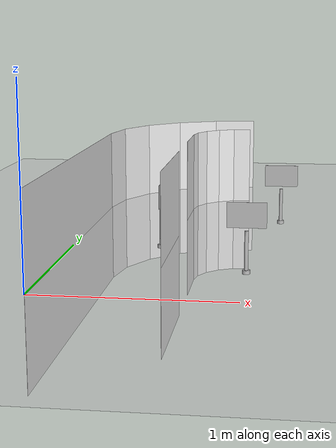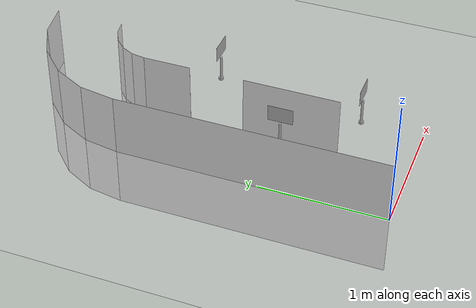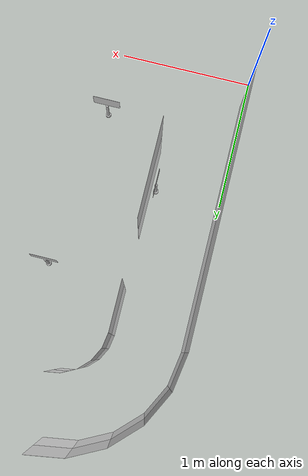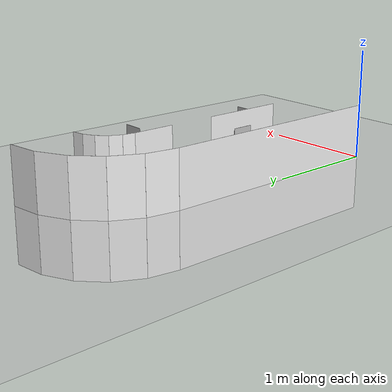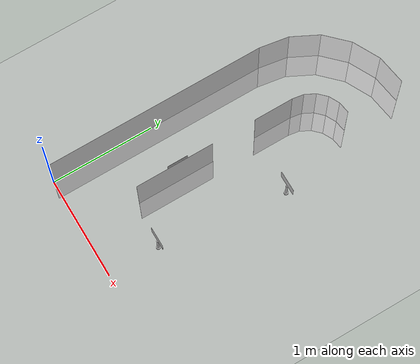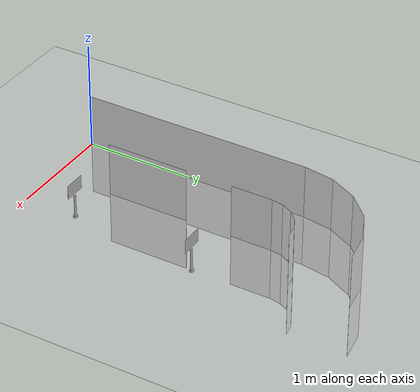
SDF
<sdf version="1.6">
 <world name="default">
  <model name="ground_plane">
   <static>1</static>
   <link name="link">
    <collision name="collision">
     <geometry><plane><normal>0 0 1</normal><size>100 100</size></plane></geometry>
     <surface><friction><ode><mu>100</mu><mu2>50</mu2></ode></friction></surface>
    </collision>
    <visual name="visual">
     <cast_shadows>0</cast_shadows>
     <geometry><plane><normal>0 0 1</normal><size>100 100</size></plane></geometry>
     <material>
      <script><uri>file://media/materials/scripts/gazebo.material</uri><name>Gazebo/Grey</name></script>
     </material>
    </visual>
   </link>
  </model>
  <model name="wall_0">
   <static>1</static>
   <link name="link">
    <collision name="collision"><geometry><box><size>2.13360426721 0.001 1</size></box></geometry></collision>
    <visual name="visual">
     <geometry><box><size>2.13360426721 0.001 1</size></box></geometry>
     <material>
      <script><name>Gazebo/White</name><uri>file://media/materials/scripts/gazebo.material</uri></script>
     </material>
    </visual>
   </link>
   <pose>0.0 1.0668021336 0 0 0 1.57079632679</pose>
  </model>
  <model name="wall_1">
   <static>1</static>
   <link name="link">
    <collision name="collision"><geometry><box><size>0.286087921841 0.001 1</size></box></geometry></collision>
    <visual name="visual">
     <geometry><box><size>0.286087921841 0.001 1</size></box></geometry>
     <material>
      <script><name>Gazebo/White</name><uri>file://media/materials/scripts/gazebo.material</uri></script>
     </material>
    </visual>
   </link>
   <pose>0.0223770055039 2.2748871196 0 0 0 1.41371669412</pose>
  </model>
  <model name="wall_2">
   <static>1</static>
   <link name="link">
    <collision name="collision"><geometry><box><size>0.286087921841 0.001 1</size></box></geometry></collision>
    <visual name="visual">
     <geometry><box><size>0.286087921841 0.001 1</size></box></geometry>
     <material>
      <script><name>Gazebo/White</name><uri>file://media/materials/scripts/gazebo.material</uri></script>
     </material>
    </visual>
   </link>
   <pose>0.109694610311 2.54362307442 0 0 0 1.09955742876</pose>
  </model>
  <model name="wall_3">
   <static>1</static>
   <link name="link">
    <collision name="collision"><geometry><box><size>0.286087921841 0.001 1</size></box></geometry></collision>
    <visual name="visual">
     <geometry><box><size>0.286087921841 0.001 1</size></box></geometry>
     <material>
      <script><name>Gazebo/White</name><uri>file://media/materials/scripts/gazebo.material</uri></script>
     </material>
    </visual>
   </link>
   <pose>0.275782564389 2.77222353162 0 0 0 0.785398163397</pose>
  </model>
  <model name="wall_4">
   <static>1</static>
   <link name="link">
    <collision name="collision"><geometry><box><size>0.286087921841 0.001 1</size></box></geometry></collision>
    <visual name="visual">
     <geometry><box><size>0.286087921841 0.001 1</size></box></geometry>
     <material>
      <script><name>Gazebo/White</name><uri>file://media/materials/scripts/gazebo.material</uri></script>
     </material>
    </visual>
   </link>
   <pose>0.50438302159 2.9383114857 0 0 0 0.471238898038</pose>
  </model>
  <model name="wall_5">
   <static>1</static>
   <link name="link">
    <collision name="collision"><geometry><box><size>0.286087921841 0.001 1</size></box></geometry></collision>
    <visual name="visual">
     <geometry><box><size>0.286087921841 0.001 1</size></box></geometry>
     <material>
      <script><name>Gazebo/White</name><uri>file://media/materials/scripts/gazebo.material</uri></script>
     </material>
    </visual>
   </link>
   <pose>0.77311897641 3.02562909051 0 0 0 0.157079632679</pose>
  </model>
  <model name="wall_9">
   <static>1</static>
   <link name="link">
    <collision name="collision"><geometry><box><size>0.762001524003 0.001 1</size></box></geometry></collision>
    <visual name="visual">
     <geometry><box><size>0.762001524003 0.001 1</size></box></geometry>
     <material>
      <script><name>Gazebo/White</name><uri>file://media/materials/scripts/gazebo.material</uri></script>
     </material>
    </visual>
   </link>
   <pose>0.558801117602 0.939801879604 0 0 0 1.57079632679</pose>
  </model>
  <model name="wall_13">
   <static>1</static>
   <link name="link">
    <collision name="collision"><geometry><box><size>0.381000762002 0.001 1</size></box></geometry></collision>
    <visual name="visual">
     <geometry><box><size>0.381000762002 0.001 1</size></box></geometry>
     <material>
      <script><name>Gazebo/White</name><uri>file://media/materials/scripts/gazebo.material</uri></script>
     </material>
    </visual>
   </link>
   <pose>0.558801117602 1.94310388621 0 0 0 1.57079632679</pose>
  </model>
  <model name="wall_14">
   <static>1</static>
   <link name="link">
    <collision name="collision"><geometry><box><size>0.111256414049 0.001 1</size></box></geometry></collision>
    <visual name="visual">
     <geometry><box><size>0.111256414049 0.001 1</size></box></geometry>
     <material>
      <script><name>Gazebo/White</name><uri>file://media/materials/scripts/gazebo.material</uri></script>
     </material>
    </visual>
   </link>
   <pose>0.567503286409 2.1885475987 0 0 0 1.41371669412</pose>
  </model>
  <model name="wall_15">
   <static>1</static>
   <link name="link">
    <collision name="collision"><geometry><box><size>0.111256414049 0.001 1</size></box></geometry></collision>
    <visual name="visual">
     <geometry><box><size>0.111256414049 0.001 1</size></box></geometry>
     <material>
      <script><name>Gazebo/White</name><uri>file://media/materials/scripts/gazebo.material</uri></script>
     </material>
    </visual>
   </link>
   <pose>0.601460132723 2.29305602557 0 0 0 1.09955742876</pose>
  </model>
  <model name="wall_16">
   <static>1</static>
   <link name="link">
    <collision name="collision"><geometry><box><size>0.111256414049 0.001 1</size></box></geometry></collision>
    <visual name="visual">
     <geometry><box><size>0.111256414049 0.001 1</size></box></geometry>
     <material>
      <script><name>Gazebo/White</name><uri>file://media/materials/scripts/gazebo.material</uri></script>
     </material>
    </visual>
   </link>
   <pose>0.666049892642 2.38195620337 0 0 0 0.785398163397</pose>
  </model>
  <model name="wall_17">
   <static>1</static>
   <link name="link">
    <collision name="collision"><geometry><box><size>0.111256414049 0.001 1</size></box></geometry></collision>
    <visual name="visual">
     <geometry><box><size>0.111256414049 0.001 1</size></box></geometry>
     <material>
      <script><name>Gazebo/White</name><uri>file://media/materials/scripts/gazebo.material</uri></script>
     </material>
    </visual>
   </link>
   <pose>0.754950070443 2.44654596329 0 0 0 0.471238898038</pose>
  </model>
  <model name="wall_18">
   <static>1</static>
   <link name="link">
    <collision name="collision"><geometry><box><size>0.111256414049 0.001 1</size></box></geometry></collision>
    <visual name="visual">
     <geometry><box><size>0.111256414049 0.001 1</size></box></geometry>
     <material>
      <script><name>Gazebo/White</name><uri>file://media/materials/scripts/gazebo.material</uri></script>
     </material>
    </visual>
   </link>
   <pose>0.859458497317 2.4805028096 0 0 0 0.157079632679</pose>
  </model>
  <model name="flag_mcd">
   <link name="plate">
    <pose>0 0 0.29 0 0 0</pose>
    <collision name="collision">
     <geometry><box><size>0.001 0.2 0.13</size></box></geometry>
     <surface><friction><ode><mu>1</mu><mu2>1</mu2></ode></friction></surface>
    </collision>
    <visual name="visual">
     <geometry><box><size>0.001 0.2 0.13</size></box></geometry>
     <material>
      <script>
       <uri>model://stop_sign/materials/scripts</uri>
       <uri>model://stop_sign/materials/textures</uri>
       <name>StopSign/MCD</name>
      </script>
     </material>
    </visual>
    <inertial>
     <inertia><ixx>0.1</ixx><ixy>0</ixy><ixz>0</ixz><iyy>0.1</iyy><iyz>0</iyz><izz>0.1</izz></inertia>
     <mass>0.1</mass>
    </inertial>
   </link>
   <link name="pole">
    <pose>0 0 0.11 0 0 0</pose>
    <collision name="collision">
     <geometry><cylinder><radius>0.01</radius><length>0.2</length></cylinder></geometry>
     <surface>
      <friction><torsional><coefficient>1</coefficient></torsional><ode><mu>1</mu><mu2>1</mu2></ode></friction>
     </surface>
    </collision>
    <visual name="visual">
     <geometry><cylinder><radius>0.01</radius><length>0.2</length></cylinder></geometry>
    </visual>
    <inertial>
     <inertia><ixx>1</ixx><ixy>0</ixy><ixz>0</ixz><iyy>1</iyy><iyz>0</iyz><izz>1</izz></inertia>
     <mass>1</mass>
    </inertial>
   </link>
   <link name="base">
    <collision name="collision">
     <geometry><cylinder><radius>0.02</radius><length>0.02</length></cylinder></geometry>
     <surface><friction><ode><mu>0.01</mu><mu2>0.01</mu2></ode></friction></surface>
    </collision>
    <visual name="visual">
     <geometry><cylinder><radius>0.02</radius><length>0.02</length></cylinder></geometry>
    </visual>
    <inertial>
     <inertia><ixx>0.1</ixx><ixy>0</ixy><ixz>0</ixz><iyy>0.1</iyy><iyz>0</iyz><izz>0.1</izz></inertia>
     <mass>0.1</mass>
    </inertial>
    <gravity>0</gravity>
   </link>
   <joint name="base_pole" type="fixed">
    <parent>base</parent>
    <child>pole</child>
    <pose>0 0 0.02 0 0 0</pose>
   </joint>
   <joint name="pole_plate" type="fixed">
    <parent>pole</parent>
    <child>plate</child>
    <pose>0 0 0.1 0 0 0</pose>
   </joint>
   <pose>1.149 1.73 0.01 0.0 0.0 1.570795</pose>
  </model>
  <model name="flag_kfc">
   <link name="plate">
    <pose>0 0 0.29 0 0 0</pose>
    <collision name="collision">
     <geometry><box><size>0.001 0.2 0.13</size></box></geometry>
     <surface><friction><ode><mu>1</mu><mu2>1</mu2></ode></friction></surface>
    </collision>
    <visual name="visual">
     <geometry><box><size>0.001 0.2 0.13</size></box></geometry>
     <material>
      <script>
       <uri>model://stop_sign/materials/scripts</uri>
       <uri>model://stop_sign/materials/textures</uri>
       <name>StopSign/KFC</name>
      </script>
     </material>
    </visual>
    <inertial>
     <inertia><ixx>0.1</ixx><ixy>0</ixy><ixz>0</ixz><iyy>0.1</iyy><iyz>0</iyz><izz>0.1</izz></inertia>
     <mass>0.1</mass>
    </inertial>
   </link>
   <link name="pole">
    <pose>0 0 0.11 0 0 0</pose>
    <collision name="collision">
     <geometry><cylinder><radius>0.01</radius><length>0.2</length></cylinder></geometry>
     <surface>
      <friction><torsional><coefficient>1</coefficient></torsional><ode><mu>1</mu><mu2>1</mu2></ode></friction>
     </surface>
    </collision>
    <visual name="visual">
     <geometry><cylinder><radius>0.01</radius><length>0.2</length></cylinder></geometry>
    </visual>
    <inertial>
     <inertia><ixx>1</ixx><ixy>0</ixy><ixz>0</ixz><iyy>1</iyy><iyz>0</iyz><izz>1</izz></inertia>
     <mass>1</mass>
    </inertial>
   </link>
   <link name="base">
    <collision name="collision">
     <geometry><cylinder><radius>0.02</radius><length>0.02</length></cylinder></geometry>
     <surface><friction><ode><mu>0.01</mu><mu2>0.01</mu2></ode></friction></surface>
    </collision>
    <visual name="visual">
     <geometry><cylinder><radius>0.02</radius><length>0.02</length></cylinder></geometry>
    </visual>
    <inertial>
     <inertia><ixx>0.1</ixx><ixy>0</ixy><ixz>0</ixz><iyy>0.1</iyy><iyz>0</iyz><izz>0.1</izz></inertia>
     <mass>0.1</mass>
    </inertial>
    <gravity>0</gravity>
   </link>
   <joint name="base_pole" type="fixed">
    <parent>base</parent>
    <child>pole</child>
    <pose>0 0 0.02 0 0 0</pose>
   </joint>
   <joint name="pole_plate" type="fixed">
    <parent>pole</parent>
    <child>plate</child>
    <pose>0 0 0.1 0 0 0</pose>
   </joint>
   <pose>0.5 1.0 0.01 0.0 0.0 0.0</pose>
  </model>
  <model name="flag_shackshake">
   <link name="plate">
    <pose>0 0 0.29 0 0 0</pose>
    <collision name="collision">
     <geometry><box><size>0.001 0.2 0.13</size></box></geometry>
     <surface><friction><ode><mu>1</mu><mu2>1</mu2></ode></friction></surface>
    </collision>
    <visual name="visual">
     <geometry><box><size>0.001 0.2 0.13</size></box></geometry>
     <material>
      <script>
       <uri>model://stop_sign/materials/scripts</uri>
       <uri>model://stop_sign/materials/textures</uri>
       <name>StopSign/SS</name>
      </script>
     </material>
    </visual>
    <inertial>
     <inertia><ixx>0.1</ixx><ixy>0</ixy><ixz>0</ixz><iyy>0.1</iyy><iyz>0</iyz><izz>0.1</izz></inertia>
     <mass>0.1</mass>
    </inertial>
   </link>
   <link name="pole">
    <pose>0 0 0.11 0 0 0</pose>
    <collision name="collision">
     <geometry><cylinder><radius>0.01</radius><length>0.2</length></cylinder></geometry>
     <surface>
      <friction><torsional><coefficient>1</coefficient></torsional><ode><mu>1</mu><mu2>1</mu2></ode></friction>
     </surface>
    </collision>
    <visual name="visual">
     <geometry><cylinder><radius>0.01</radius><length>0.2</length></cylinder></geometry>
    </visual>
    <inertial>
     <inertia><ixx>1</ixx><ixy>0</ixy><ixz>0</ixz><iyy>1</iyy><iyz>0</iyz><izz>1</izz></inertia>
     <mass>1</mass>
    </inertial>
   </link>
   <link name="base">
    <collision name="collision">
     <geometry><cylinder><radius>0.02</radius><length>0.02</length></cylinder></geometry>
     <surface><friction><ode><mu>0.01</mu><mu2>0.01</mu2></ode></friction></surface>
    </collision>
    <visual name="visual">
     <geometry><cylinder><radius>0.02</radius><length>0.02</length></cylinder></geometry>
    </visual>
    <inertial>
     <inertia><ixx>0.1</ixx><ixy>0</ixy><ixz>0</ixz><iyy>0.1</iyy><iyz>0</iyz><izz>0.1</izz></inertia>
     <mass>0.1</mass>
    </inertial>
    <gravity>0</gravity>
   </link>
   <joint name="base_pole" type="fixed">
    <parent>base</parent>
    <child>pole</child>
    <pose>0 0 0.02 0 0 0</pose>
   </joint>
   <joint name="pole_plate" type="fixed">
    <parent>pole</parent>
    <child>plate</child>
    <pose>0 0 0.1 0 0 0</pose>
   </joint>
   <pose>1.0 0.5 0.01 0.0 0.0 1.570796327</pose>
  </model>
 </world>
</sdf>
